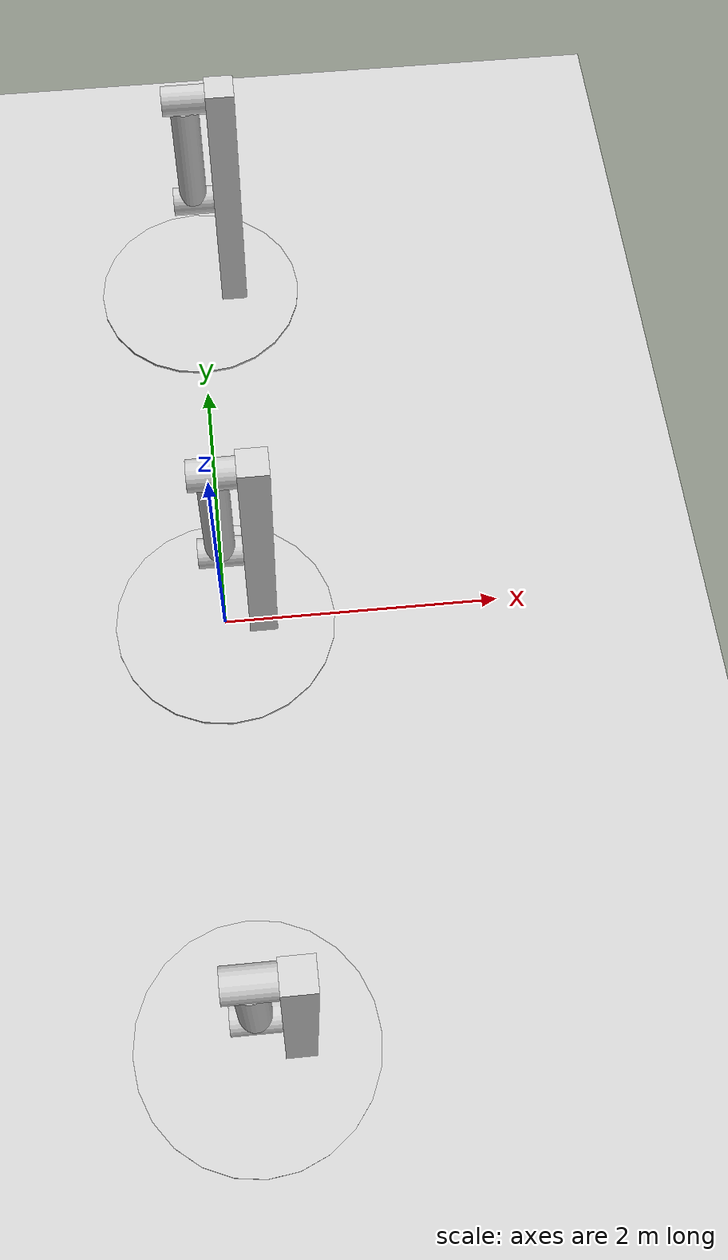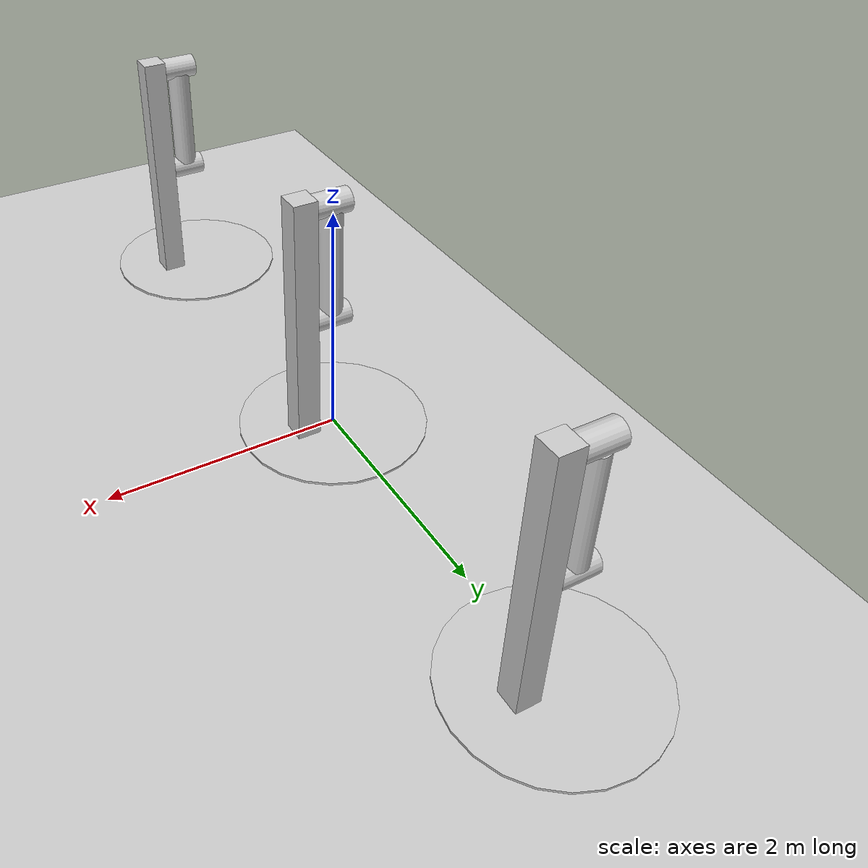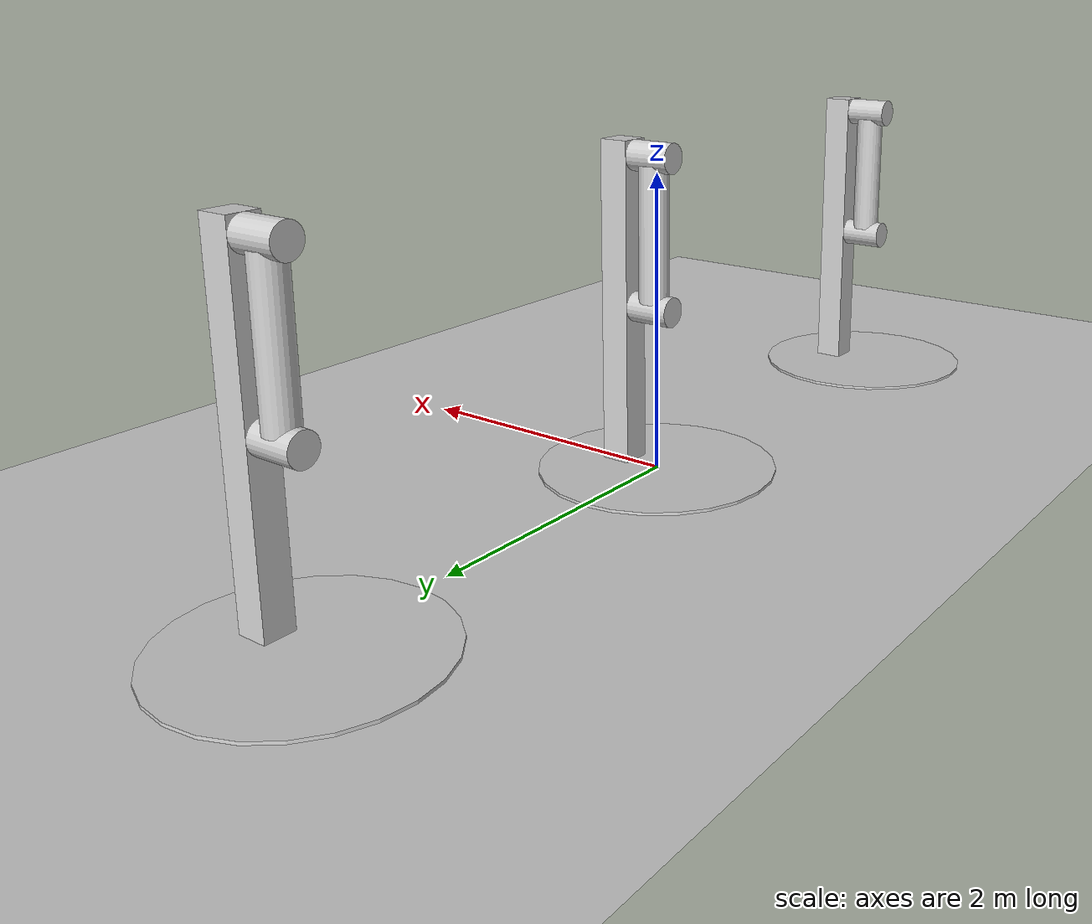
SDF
<sdf version="1.11">

  <world name="default">
    <plugin filename="gz-sim-physics-system" name="gz::sim::systems::Physics"></plugin>
    <plugin filename="gz-sim-user-commands-system" name="gz::sim::systems::UserCommands"></plugin>
    <plugin filename="gz-sim-scene-broadcaster-system" name="gz::sim::systems::SceneBroadcaster"></plugin>
    <light type="directional" name="sun">
      <cast_shadows>true</cast_shadows>
      <pose>0 0 10 0 0 0</pose>
      <diffuse>0.8 0.8 0.8 1</diffuse>
      <specular>0.2 0.2 0.2 1</specular>
      <direction>0.3 -0.3 -0.9</direction>
    </light>
    <model name="ground_plane">
      <static>true</static>
      <link name="link">
        <collision name="collision">
          <geometry>
            <plane>
              <normal>0 0 1</normal>
              <size>100 100</size>
            </plane>
          </geometry>
        </collision>
        <visual name="visual">
          <geometry>
            <plane>
              <normal>0 0 1</normal>
              <size>100 100</size>
            </plane>
          </geometry>
          <material>
            <ambient>0.8 0.8 0.8 1</ambient>
            <diffuse>0.8 0.8 0.8 1</diffuse>
          </material>
        </visual>
      </link>
    </model>

    <model name="pendulum_bounce_at_bottom">
      <pose degrees="true">0 3 0 0 0 180</pose>
      <frame name="base_plate_center" attached_to="base">
        <pose>0 0 0.01 0 0 0</pose>
      </frame>
      <frame name="base_pole_center" attached_to="base">
        <pose>-0.275 0 1.1 0 0 0</pose>
      </frame>
      <link name="base">
        <inertial>
          <pose>-0.188749 0 0.75813399999999997 -0.13567899999999999 0 1.5708</pose>
          <mass>2500</mass>
          <inertia>
            <ixx>154.202</ixx>
            <ixy>0</ixy>
            <ixz>0</ixz>
            <iyy>152.286</iyy>
            <iyz>0</iyz>
            <izz>28.8249</izz>
          </inertia>
        </inertial>
        <collision name="col_plate_on_ground">
          <pose relative_to="base_plate_center"/>
          <geometry>
            <cylinder>
              <radius>0.8</radius>
              <length>0.02</length>
            </cylinder>
          </geometry>
        </collision>
        <visual name="vis_plate_on_ground">
          <pose relative_to="base_plate_center"/>
          <geometry>
            <cylinder>
              <radius>0.8</radius>
              <length>0.02</length>
            </cylinder>
          </geometry>
          <material>
            <ambient>0.8 0.8 0.8 1</ambient>
            <diffuse>0.8 0.8 0.8 1</diffuse>
            <specular>0.8 0.8 0.8 1</specular>
          </material>
        </visual>
        <collision name="col_pole">
          <pose relative_to="base_pole_center"/>
          <geometry>
            <box>
              <size>0.2 0.2 2.2</size>
            </box>
          </geometry>
        </collision>
        <visual name="vis_pole">
          <pose relative_to="base_pole_center"/>
          <geometry>
            <box>
              <size>0.2 0.2 2.2</size>
            </box>
          </geometry>
          <material>
            <ambient>0.8 0.8 0.8 1</ambient>
            <diffuse>0.8 0.8 0.8 1</diffuse>
            <specular>0.8 0.8 0.8 1</specular>
          </material>
        </visual>
      </link>

      <frame name="base_top_mount" attached_to="base">
        <pose relative_to="base_pole_center">0.1 0 1.0 0 0 0</pose>
      </frame>
      <!-- upper link, length 1 -->
      <link name="upper_link">
        <pose degrees="true" relative_to="base_top_mount">0.15 0 0 -180 0 0</pose>
        <self_collide>0</self_collide>
        <inertial auto="true" />
        <collision name="col_upper_joint">
          <pose degrees="true">0 0 0 0 90 0</pose>
          <geometry>
            <cylinder>
              <radius>0.1</radius>
              <length>0.3</length>
            </cylinder>
          </geometry>
        </collision>
        <visual name="vis_upper_joint">
          <pose degrees="true">0 0 0 0 90 0</pose>
          <geometry>
            <cylinder>
              <radius>0.1</radius>
              <length>0.3</length>
            </cylinder>
          </geometry>
          <material>
            <ambient>0.8 0.8 0.8 1</ambient>
            <diffuse>0.8 0.8 0.8 1</diffuse>
            <specular>0.8 0.8 0.8 1</specular>
          </material>
        </visual>
        <collision name="col_bob">
          <pose degrees="true">0 0 1.0 0 90 0</pose>
          <geometry>
            <cylinder>
              <radius>0.1</radius>
              <length>0.3</length>
            </cylinder>
          </geometry>
        </collision>
        <visual name="vis_bob">
          <pose degrees="true">0 0 1.0 0 90 0</pose>
          <geometry>
            <cylinder>
              <radius>0.1</radius>
              <length>0.3</length>
            </cylinder>
          </geometry>
          <material>
            <ambient>0.8 0.8 0.8 1</ambient>
            <diffuse>0.8 0.8 0.8 1</diffuse>
            <specular>0.8 0.8 0.8 1</specular>
          </material>
        </visual>
        <collision name="col_long_cylinder">
          <pose>0 0 0.5 0 0 0</pose>
          <geometry>
            <cylinder>
              <radius>0.1</radius>
              <length>0.9</length>
            </cylinder>
          </geometry>
        </collision>
        <visual name="vis_long_cylinder">
          <pose>0 0 0.5 0 0 0</pose>
          <geometry>
            <cylinder>
              <radius>0.1</radius>
              <length>0.9</length>
            </cylinder>
          </geometry>
          <material>
            <ambient>0.8 0.8 0.8 1</ambient>
            <diffuse>0.8 0.8 0.8 1</diffuse>
            <specular>0.8 0.8 0.8 1</specular>
          </material>
        </visual>
      </link>

      <!-- pin joint for upper link, at origin of upper link -->
      <joint name="upper_joint" type="revolute">
        <parent>base</parent>
        <child>upper_link</child>
        <axis>
          <xyz>1.0 0 0</xyz>
        </axis>
      </joint>

      <plugin name="joint_control::ResetJointVelocityNearPosition"
          filename="libResetJointVelocityNearPosition.so">
        <trigger_position>0.0</trigger_position>
        <velocity_after_reset>2.0</velocity_after_reset>
      </plugin>
    </model>

    <model name="pendulum_reset_and_pulse_velocity">
      <pose degrees="true">0 0 0 0 0 180</pose>
      <frame name="base_plate_center" attached_to="base">
        <pose>0 0 0.01 0 0 0</pose>
      </frame>
      <frame name="base_pole_center" attached_to="base">
        <pose>-0.275 0 1.1 0 0 0</pose>
      </frame>
      <link name="base">
        <inertial>
          <pose>-0.188749 0 0.75813399999999997 -0.13567899999999999 0 1.5708</pose>
          <mass>2500</mass>
          <inertia>
            <ixx>154.202</ixx>
            <ixy>0</ixy>
            <ixz>0</ixz>
            <iyy>152.286</iyy>
            <iyz>0</iyz>
            <izz>28.8249</izz>
          </inertia>
        </inertial>
        <collision name="col_plate_on_ground">
          <pose relative_to="base_plate_center"/>
          <geometry>
            <cylinder>
              <radius>0.8</radius>
              <length>0.02</length>
            </cylinder>
          </geometry>
        </collision>
        <visual name="vis_plate_on_ground">
          <pose relative_to="base_plate_center"/>
          <geometry>
            <cylinder>
              <radius>0.8</radius>
              <length>0.02</length>
            </cylinder>
          </geometry>
          <material>
            <ambient>0.8 0.8 0.8 1</ambient>
            <diffuse>0.8 0.8 0.8 1</diffuse>
            <specular>0.8 0.8 0.8 1</specular>
          </material>
        </visual>
        <collision name="col_pole">
          <pose relative_to="base_pole_center"/>
          <geometry>
            <box>
              <size>0.2 0.2 2.2</size>
            </box>
          </geometry>
        </collision>
        <visual name="vis_pole">
          <pose relative_to="base_pole_center"/>
          <geometry>
            <box>
              <size>0.2 0.2 2.2</size>
            </box>
          </geometry>
          <material>
            <ambient>0.8 0.8 0.8 1</ambient>
            <diffuse>0.8 0.8 0.8 1</diffuse>
            <specular>0.8 0.8 0.8 1</specular>
          </material>
        </visual>
      </link>

      <frame name="base_top_mount" attached_to="base">
        <pose relative_to="base_pole_center">0.1 0 1.0 0 0 0</pose>
      </frame>
      <!-- upper link, length 1 -->
      <link name="upper_link">
        <pose degrees="true" relative_to="base_top_mount">0.15 0 0 -180 0 0</pose>
        <self_collide>0</self_collide>
        <inertial auto="true" />
        <collision name="col_upper_joint">
          <pose degrees="true">0 0 0 0 90 0</pose>
          <geometry>
            <cylinder>
              <radius>0.1</radius>
              <length>0.3</length>
            </cylinder>
          </geometry>
        </collision>
        <visual name="vis_upper_joint">
          <pose degrees="true">0 0 0 0 90 0</pose>
          <geometry>
            <cylinder>
              <radius>0.1</radius>
              <length>0.3</length>
            </cylinder>
          </geometry>
          <material>
            <ambient>0.8 0.8 0.8 1</ambient>
            <diffuse>0.8 0.8 0.8 1</diffuse>
            <specular>0.8 0.8 0.8 1</specular>
          </material>
        </visual>
        <collision name="col_bob">
          <pose degrees="true">0 0 1.0 0 90 0</pose>
          <geometry>
            <cylinder>
              <radius>0.1</radius>
              <length>0.3</length>
            </cylinder>
          </geometry>
        </collision>
        <visual name="vis_bob">
          <pose degrees="true">0 0 1.0 0 90 0</pose>
          <geometry>
            <cylinder>
              <radius>0.1</radius>
              <length>0.3</length>
            </cylinder>
          </geometry>
          <material>
            <ambient>0.8 0.8 0.8 1</ambient>
            <diffuse>0.8 0.8 0.8 1</diffuse>
            <specular>0.8 0.8 0.8 1</specular>
          </material>
        </visual>
        <collision name="col_long_cylinder">
          <pose>0 0 0.5 0 0 0</pose>
          <geometry>
            <cylinder>
              <radius>0.1</radius>
              <length>0.9</length>
            </cylinder>
          </geometry>
        </collision>
        <visual name="vis_long_cylinder">
          <pose>0 0 0.5 0 0 0</pose>
          <geometry>
            <cylinder>
              <radius>0.1</radius>
              <length>0.9</length>
            </cylinder>
          </geometry>
          <material>
            <ambient>0.8 0.8 0.8 1</ambient>
            <diffuse>0.8 0.8 0.8 1</diffuse>
            <specular>0.8 0.8 0.8 1</specular>
          </material>
        </visual>
      </link>

      <!-- pin joint for upper link, at origin of upper link -->
      <joint name="upper_joint" type="revolute">
        <parent>base</parent>
        <child>upper_link</child>
        <axis>
          <xyz>1.0 0 0</xyz>
        </axis>
      </joint>

      <plugin name="joint_control::ResetJointVelocityNearPosition"
          filename="libResetJointVelocityNearPosition.so">
        <trigger_position>0.0</trigger_position>
        <velocity_after_reset>2.0</velocity_after_reset>
      </plugin>

      <plugin name="joint_control::PulseJointVelocityCommand"
          filename="libPulseJointVelocityCommand.so">
        <pulse_seconds>2.0</pulse_seconds>
        <velocity_command>1.0</velocity_command>
      </plugin>
    </model>

    <model name="pendulum_with_velocity_pulses">
      <pose degrees="true">0 -3 0 0 0 180</pose>
      <frame name="base_plate_center" attached_to="base">
        <pose>0 0 0.01 0 0 0</pose>
      </frame>
      <frame name="base_pole_center" attached_to="base">
        <pose>-0.275 0 1.1 0 0 0</pose>
      </frame>
      <link name="base">
        <inertial>
          <pose>-0.188749 0 0.75813399999999997 -0.13567899999999999 0 1.5708</pose>
          <mass>2500</mass>
          <inertia>
            <ixx>154.202</ixx>
            <ixy>0</ixy>
            <ixz>0</ixz>
            <iyy>152.286</iyy>
            <iyz>0</iyz>
            <izz>28.8249</izz>
          </inertia>
        </inertial>
        <collision name="col_plate_on_ground">
          <pose relative_to="base_plate_center"/>
          <geometry>
            <cylinder>
              <radius>0.8</radius>
              <length>0.02</length>
            </cylinder>
          </geometry>
        </collision>
        <visual name="vis_plate_on_ground">
          <pose relative_to="base_plate_center"/>
          <geometry>
            <cylinder>
              <radius>0.8</radius>
              <length>0.02</length>
            </cylinder>
          </geometry>
          <material>
            <ambient>0.8 0.8 0.8 1</ambient>
            <diffuse>0.8 0.8 0.8 1</diffuse>
            <specular>0.8 0.8 0.8 1</specular>
          </material>
        </visual>
        <collision name="col_pole">
          <pose relative_to="base_pole_center"/>
          <geometry>
            <box>
              <size>0.2 0.2 2.2</size>
            </box>
          </geometry>
        </collision>
        <visual name="vis_pole">
          <pose relative_to="base_pole_center"/>
          <geometry>
            <box>
              <size>0.2 0.2 2.2</size>
            </box>
          </geometry>
          <material>
            <ambient>0.8 0.8 0.8 1</ambient>
            <diffuse>0.8 0.8 0.8 1</diffuse>
            <specular>0.8 0.8 0.8 1</specular>
          </material>
        </visual>
      </link>

      <frame name="base_top_mount" attached_to="base">
        <pose relative_to="base_pole_center">0.1 0 1.0 0 0 0</pose>
      </frame>
      <!-- upper link, length 1 -->
      <link name="upper_link">
        <pose degrees="true" relative_to="base_top_mount">0.15 0 0 -180 0 0</pose>
        <self_collide>0</self_collide>
        <inertial auto="true" />
        <collision name="col_upper_joint">
          <pose degrees="true">0 0 0 0 90 0</pose>
          <geometry>
            <cylinder>
              <radius>0.1</radius>
              <length>0.3</length>
            </cylinder>
          </geometry>
        </collision>
        <visual name="vis_upper_joint">
          <pose degrees="true">0 0 0 0 90 0</pose>
          <geometry>
            <cylinder>
              <radius>0.1</radius>
              <length>0.3</length>
            </cylinder>
          </geometry>
          <material>
            <ambient>0.8 0.8 0.8 1</ambient>
            <diffuse>0.8 0.8 0.8 1</diffuse>
            <specular>0.8 0.8 0.8 1</specular>
          </material>
        </visual>
        <collision name="col_bob">
          <pose degrees="true">0 0 1.0 0 90 0</pose>
          <geometry>
            <cylinder>
              <radius>0.1</radius>
              <length>0.3</length>
            </cylinder>
          </geometry>
        </collision>
        <visual name="vis_bob">
          <pose degrees="true">0 0 1.0 0 90 0</pose>
          <geometry>
            <cylinder>
              <radius>0.1</radius>
              <length>0.3</length>
            </cylinder>
          </geometry>
          <material>
            <ambient>0.8 0.8 0.8 1</ambient>
            <diffuse>0.8 0.8 0.8 1</diffuse>
            <specular>0.8 0.8 0.8 1</specular>
          </material>
        </visual>
        <collision name="col_long_cylinder">
          <pose>0 0 0.5 0 0 0</pose>
          <geometry>
            <cylinder>
              <radius>0.1</radius>
              <length>0.9</length>
            </cylinder>
          </geometry>
        </collision>
        <visual name="vis_long_cylinder">
          <pose>0 0 0.5 0 0 0</pose>
          <geometry>
            <cylinder>
              <radius>0.1</radius>
              <length>0.9</length>
            </cylinder>
          </geometry>
          <material>
            <ambient>0.8 0.8 0.8 1</ambient>
            <diffuse>0.8 0.8 0.8 1</diffuse>
            <specular>0.8 0.8 0.8 1</specular>
          </material>
        </visual>
      </link>

      <!-- pin joint for upper link, at origin of upper link -->
      <joint name="upper_joint" type="revolute">
        <parent>base</parent>
        <child>upper_link</child>
        <axis>
          <xyz>1.0 0 0</xyz>
        </axis>
      </joint>

      <plugin name="joint_control::PulseJointVelocityCommand"
          filename="libPulseJointVelocityCommand.so">
        <pulse_seconds>2.0</pulse_seconds>
        <velocity_command>1.0</velocity_command>
      </plugin>
    </model>
  </world>
</sdf>
